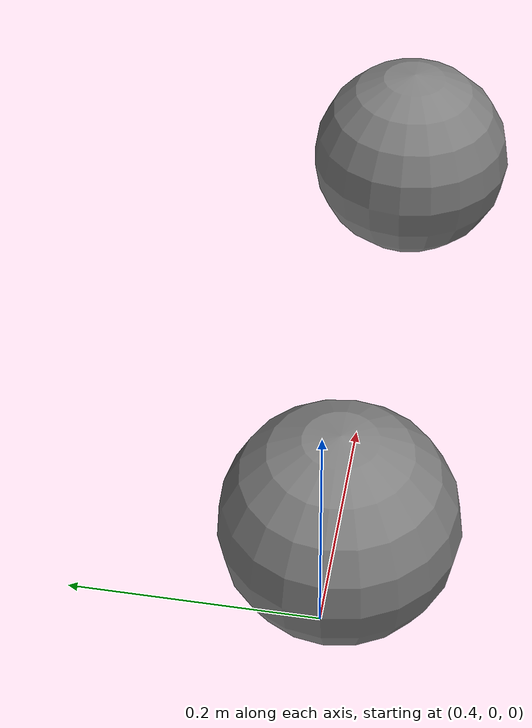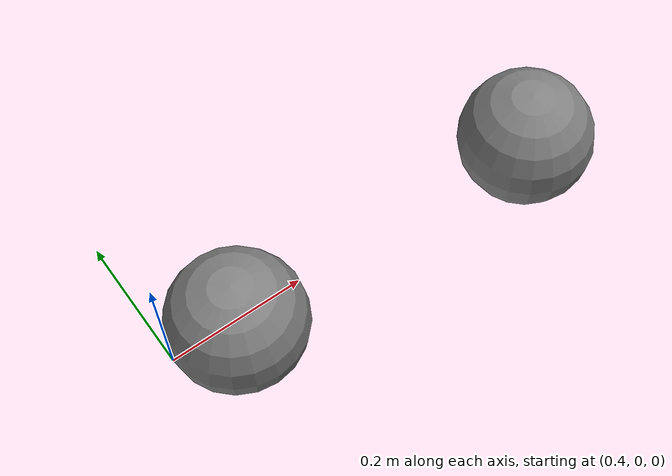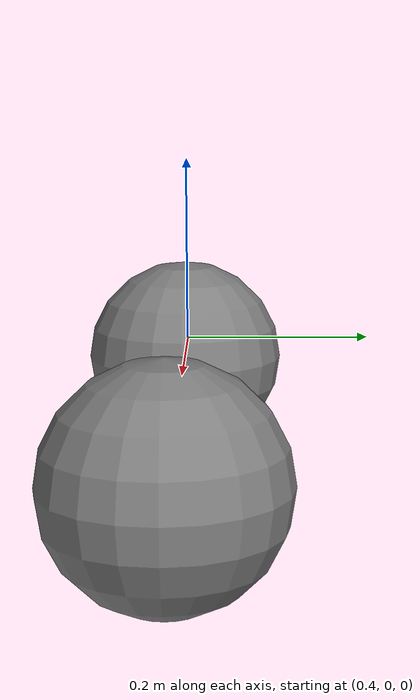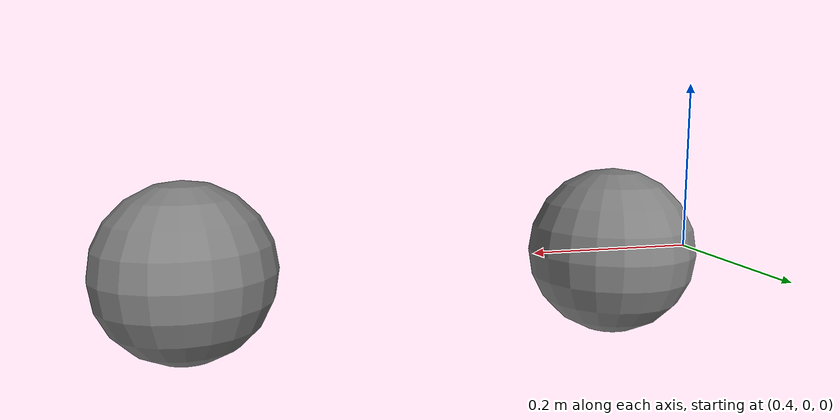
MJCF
<mujoco model="t23">
            <worldbody>
                <body name="b1" pos="0 0 0">
                    <body name="b1_child" pos="0.5 0 0">
                        <geom name="g_child" type="sphere" size="0.1" pos="0 0 0"/>
                    </body>
                </body>
                <body name="b2" pos="1 0 0">
                    <geom name="g2" type="sphere" size="0.1" pos="0 0 0"/>
                </body>
            </worldbody>
            <sensor>
                <distance name="d" body1="b1" body2="b2" cutoff="10"/>
            </sensor>
        </mujoco>
